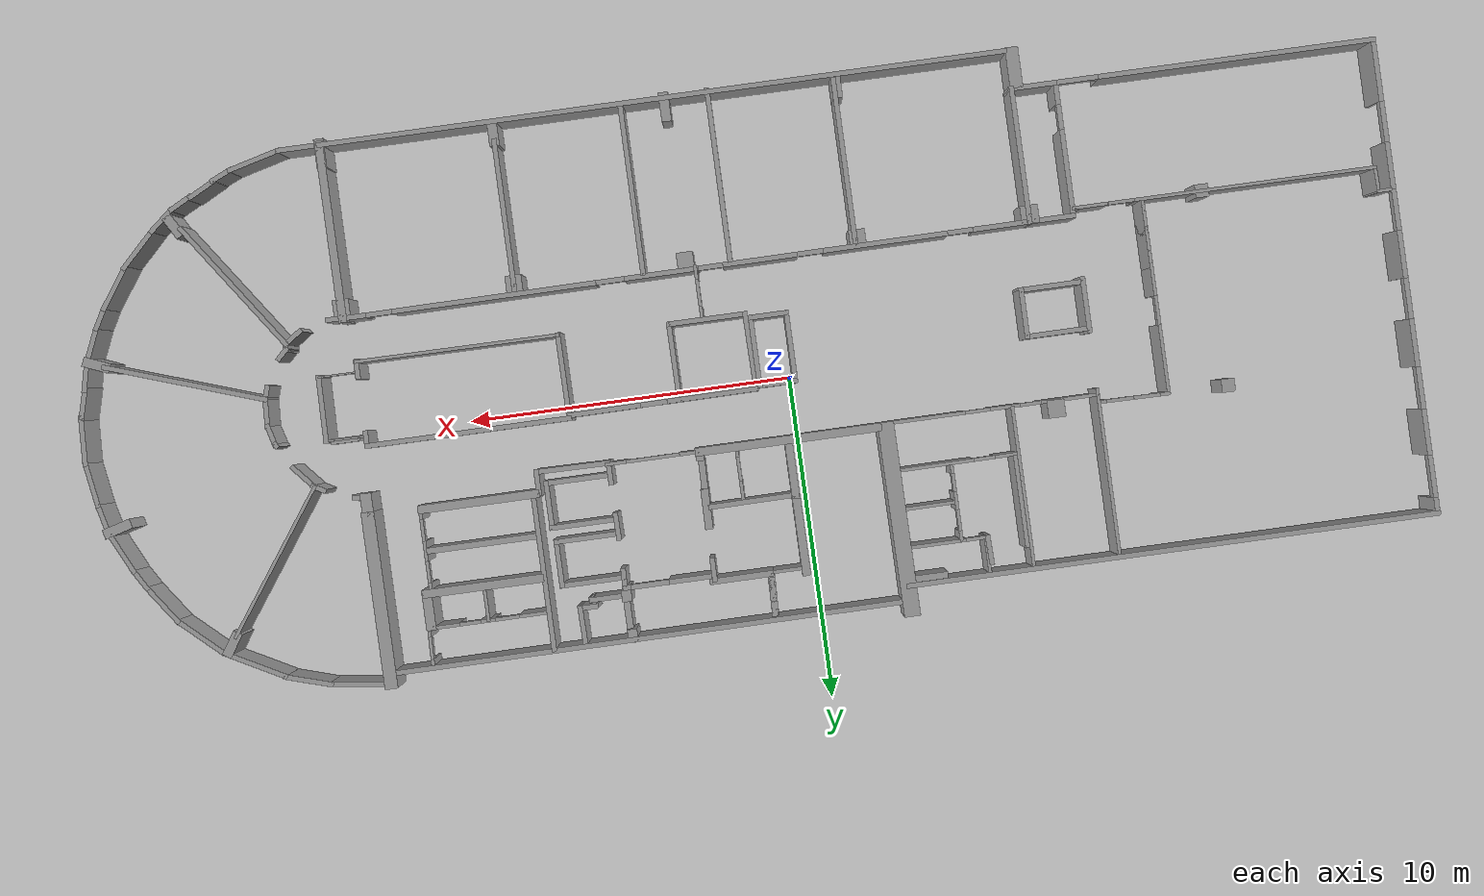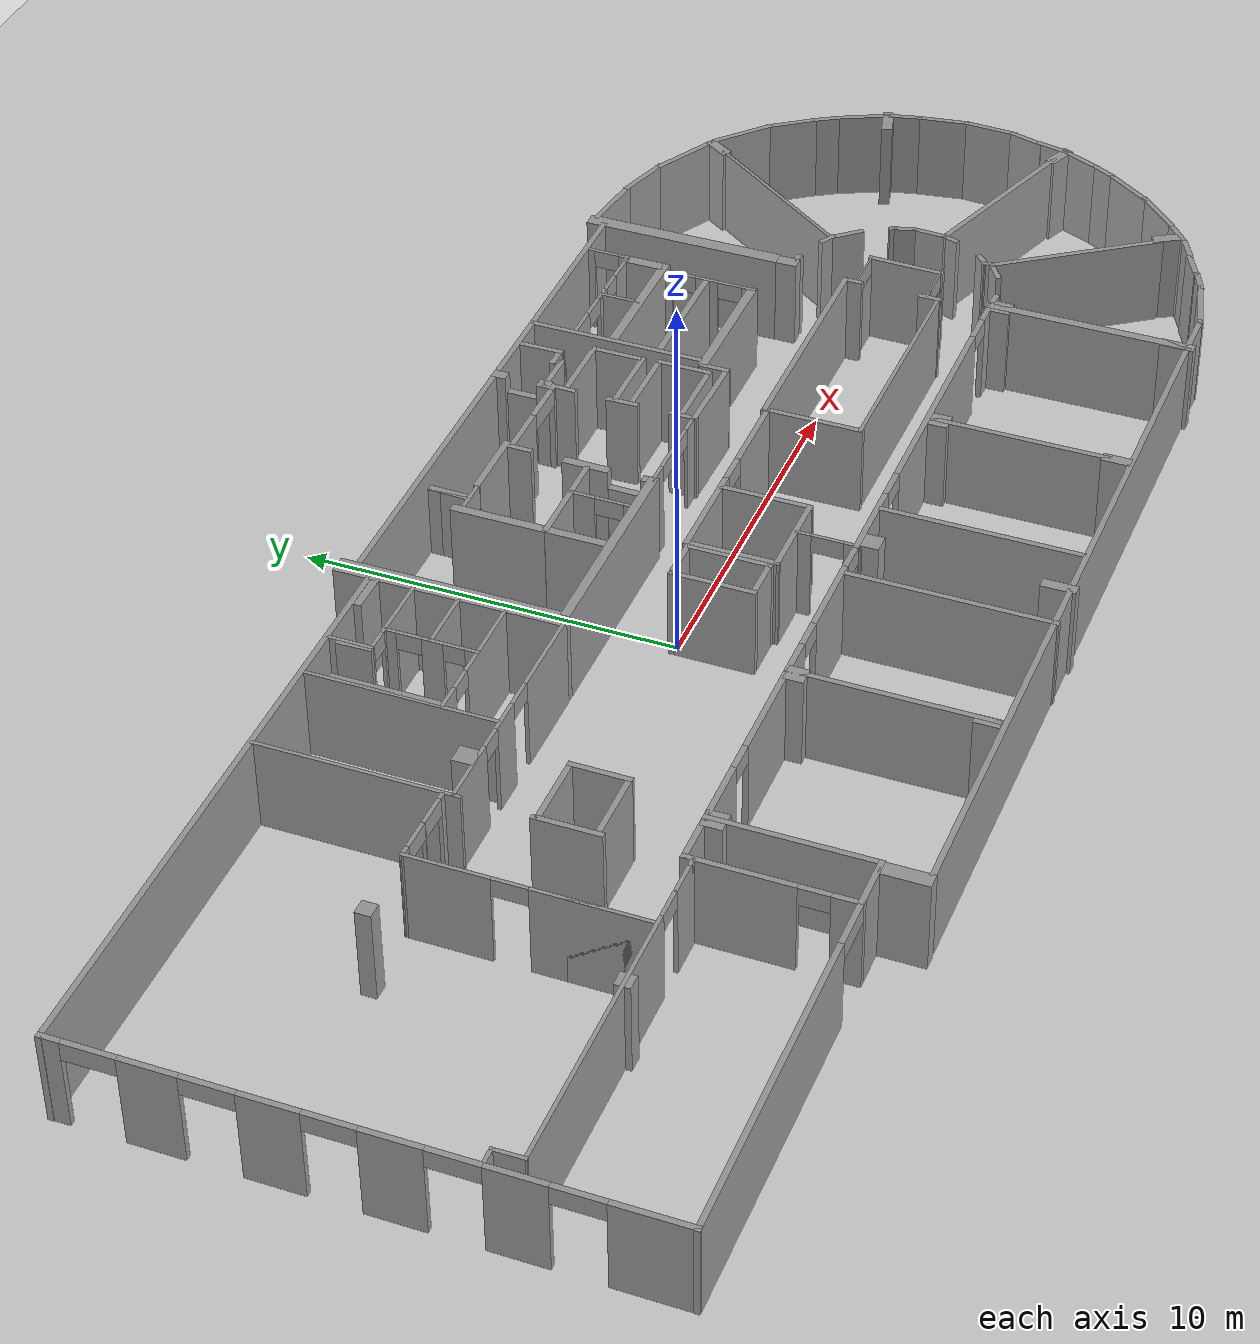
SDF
<sdf version="1.8">
 <world name="6OG">
  <light name="sun" type="directional">
   <pose>0 0 10 0 0 0</pose>
   <diffuse>0.8 0.8 0.8 1</diffuse>
   <specular>0.2 0.2 0.2 1</specular>
   <attenuation>
    <range>1000</range>
    <constant>0.9</constant>
    <linear>0.01</linear>
    <quadratic>0.001</quadratic>
   </attenuation>
   <direction>-0.5 0.1 -0.9</direction>
  </light>
  <model name="ground_plane">
   <static>true</static>
   <link name="link">
    <collision name="collision">
     <geometry><plane><normal>0 0 1</normal><size>1900 200</size></plane></geometry>
    </collision>
    <visual name="visual">
     <geometry><plane><normal>0 0 1</normal><size>1900 200</size></plane></geometry>
     <material>
      <ambient>0.8 0.8 0.8 1</ambient>
      <diffuse>0.8 0.8 0.8 1</diffuse>
      <specular>0.8 0.8 0.8 1</specular>
     </material>
    </visual>
   </link>
  </model>
  <include><uri>file:///workspace/src/simulation/tiplu_world/models/6OG</uri><name>6OG</name></include>
 </world>
</sdf>
